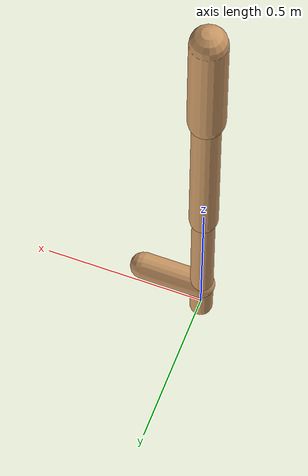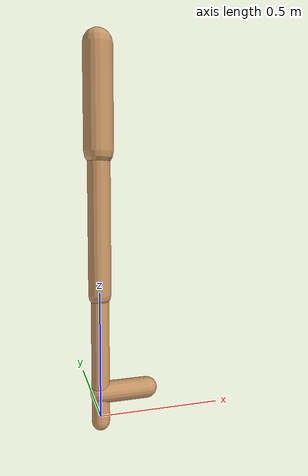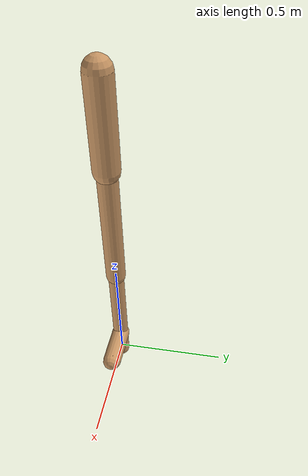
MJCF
<mujoco model="walker2d">
  <compiler angle="degree" coordinate="global" inertiafromgeom="true" />
  <default>
    <joint armature="0.01" damping=".1" limited="true" />
    <geom conaffinity="0" condim="3" contype="1" density="1000" friction="0.8 .1 .1" rgba="0.8 0.6 .4 1" />
  </default>
  <option integrator="RK4" timestep="0.002" />
  <worldbody>

    <body name="torso" pos="0 0 0.22409602946767787">
      <joint armature="0" axis="1 0 0" damping="0" limited="false" name="ignorex" pos="0 0 0" stiffness="0" type="slide" />
      <joint armature="0" axis="0 0 1" damping="0" limited="false" name="ignorez" pos="0 0 0" ref="1.25" stiffness="0" type="slide" />
      <joint armature="0" axis="0 1 0" damping="0" limited="false" name="ignorey" pos="0 0 0" stiffness="0" type="hinge" />
      <geom fromto="0 0 1.45 0 0 1.05" name="torso_geom" size="0.05807510105214855" type="capsule" />
      <body name="thigh">
        <joint axis="0 -1 0" name="thigh_joint" pos="0 0 1.05" range="-150 0" type="hinge" />
        <geom fromto="0.0 0.0 1.05 0.0 0.0 0.493849249199521" name="thigh_geom" size="0.044587883610441637" type="capsule" />
        <body name="leg" pos="0.0 0.0 -0.10615075080047898">
          <joint axis="0 -1 0" name="leg_joint" pos="0 0 0.6" range="-150 0" type="hinge" />
          <geom fromto="0.0 0.0 0.6 0.0 0.0 -0.01794527866719886" name="leg_geom" size="0.03567030688835331" type="capsule" />
          <body name="foot" pos="0.0 0.0 -0.11794527866719887">
            <joint axis="0 -1 0" name="foot_joint" pos="0 0 0.1" range="-45 45" type="hinge" />
            <geom fromto="0.0 0.0 0.1 0.18885505463682206 0.0 0.1" name="foot_geom" size="0.042047672296850136" type="capsule" />
          </body>
        </body>
      </body>

      <body name="thigh_left">
        <joint axis="0 -1 0" name="thigh_left_joint" pos="0 0 1.05" range="-150 0" type="hinge" />
        <geom fromto="0.0 0.0 1.05 0.0 0.0 0.493849249199521" name="thigh_left_geom" rgba=".7 .3 .6 1" size="0.044587883610441637" type="capsule" />
        <body name="leg_left" pos="0.0 0.0 -0.10615075080047898">
          <joint axis="0 -1 0" name="leg_left_joint" pos="0 0 0.6" range="-150 0" type="hinge" />
          <geom fromto="0.0 0.0 0.6 0.0 0.0 -0.01794527866719886" name="leg_left_geom" rgba=".7 .3 .6 1" size="0.03567030688835331" type="capsule" />
          <body name="foot_left" pos="0.0 0.0 -0.11794527866719887">
            <joint axis="0 -1 0" name="foot_left_joint" pos="0 0 0.1" range="-45 45" type="hinge" />
            <geom fromto="0.0 0.0 0.1 0.18885505463682206 0.0 0.1" name="foot_left_geom" rgba=".7 .3 .6 1" size="0.042047672296850136" type="capsule" />
          </body>
        </body>
      </body>
    </body>
  </worldbody>
  <actuator>

    <motor ctrllimited="true" ctrlrange="-1.0 1.0" gear="100" joint="thigh_joint" />
    <motor ctrllimited="true" ctrlrange="-1.0 1.0" gear="100" joint="leg_joint" />
    <motor ctrllimited="true" ctrlrange="-1.0 1.0" gear="100" joint="foot_joint" />
    <motor ctrllimited="true" ctrlrange="-1.0 1.0" gear="100" joint="thigh_left_joint" />
    <motor ctrllimited="true" ctrlrange="-1.0 1.0" gear="100" joint="leg_left_joint" />
    <motor ctrllimited="true" ctrlrange="-1.0 1.0" gear="100" joint="foot_left_joint" />

  </actuator>
</mujoco>
